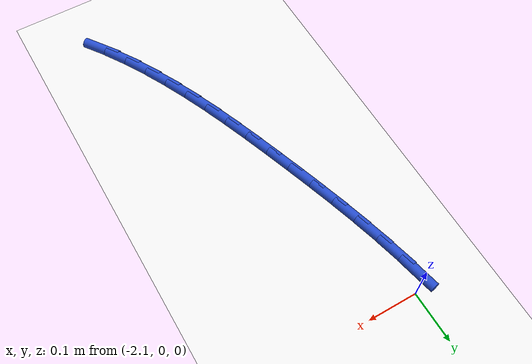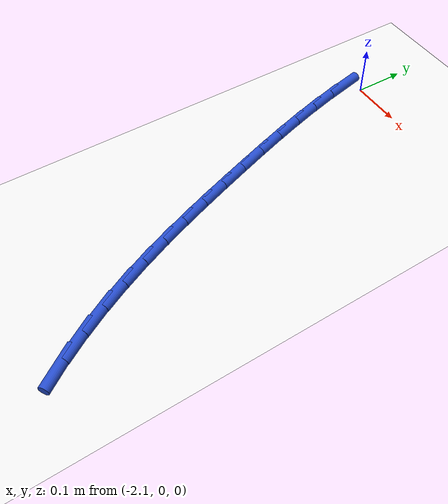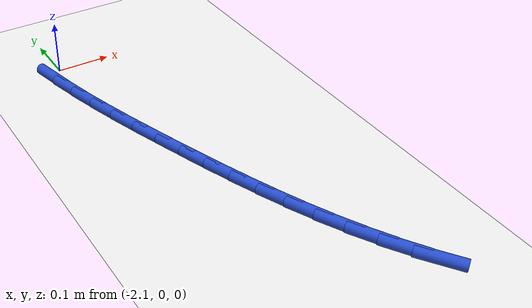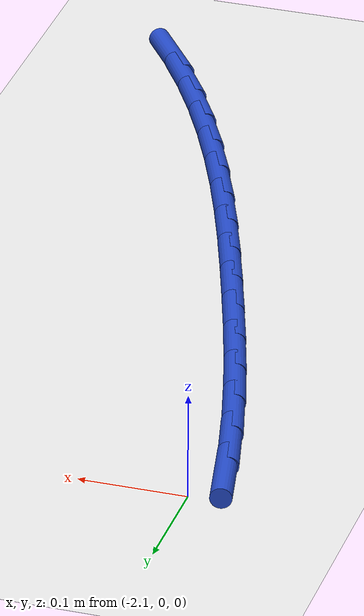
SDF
<sdf version="1.6">
 <world name="default">
  <model name="ground_plane">
   <static>1</static>
   <link name="link">
    <collision name="collision">
     <geometry><plane><normal>0 0 1</normal><size>100 100</size></plane></geometry>
     <surface><friction><ode><mu>100</mu><mu2>50</mu2></ode></friction></surface>
    </collision>
    <visual name="visual">
     <cast_shadows>0</cast_shadows>
     <geometry><plane><normal>0 0 1</normal><size>100 100</size></plane></geometry>
     <material>
      <script><uri>file://media/materials/scripts/gazebo.material</uri><name>Gazebo/WhiteGlow</name></script>
     </material>
    </visual>
   </link>
  </model>
  <model name="line">
   <link name="link_66">
    <pose>-2.1241616020836496 -0.028873466269548266 0.01 0 1.57 -1.35737852564886</pose>
    <collision name="collision">
     <geometry><cylinder><radius>0.01</radius><length>0.08</length></cylinder></geometry>
    </collision>
    <visual name="visual">
     <material>
      <script><name>Gazebo/Blue</name><uri>file://media/materials/scripts/gazebo.material</uri></script>
     </material>
     <geometry><cylinder><radius>0.01</radius><length>0.08</length></cylinder></geometry>
    </visual>
   </link>
   <link name="link_67">
    <pose>-2.1127475924562478 -0.08154099998868475 0.01 0 1.57 -1.3246392589999043</pose>
    <collision name="collision">
     <geometry><cylinder><radius>0.01</radius><length>0.08</length></cylinder></geometry>
    </collision>
    <visual name="visual">
     <material>
      <script><name>Gazebo/Blue</name><uri>file://media/materials/scripts/gazebo.material</uri></script>
     </material>
     <geometry><cylinder><radius>0.01</radius><length>0.08</length></cylinder></geometry>
    </visual>
   </link>
   <link name="link_68">
    <pose>-2.0994980373681242 -0.1342750387316325 0.01 0 1.57 -1.297632604780939</pose>
    <collision name="collision">
     <geometry><cylinder><radius>0.01</radius><length>0.08</length></cylinder></geometry>
    </collision>
    <visual name="visual">
     <material>
      <script><name>Gazebo/Blue</name><uri>file://media/materials/scripts/gazebo.material</uri></script>
     </material>
     <geometry><cylinder><radius>0.01</radius><length>0.08</length></cylinder></geometry>
    </visual>
   </link>
   <link name="link_69">
    <pose>-2.0847448917814693 -0.18693340365534228 0.01 0 1.57 -1.2759729886310454</pose>
    <collision name="collision">
     <geometry><cylinder><radius>0.01</radius><length>0.08</length></cylinder></geometry>
    </collision>
    <visual name="visual">
     <material>
      <script><name>Gazebo/Blue</name><uri>file://media/materials/scripts/gazebo.material</uri></script>
     </material>
     <geometry><cylinder><radius>0.01</radius><length>0.08</length></cylinder></geometry>
    </visual>
   </link>
   <link name="link_70">
    <pose>-2.0688201106584745 -0.23937391591676502 0.01 0 1.57 -1.259375085244555</pose>
    <collision name="collision">
     <geometry><cylinder><radius>0.01</radius><length>0.08</length></cylinder></geometry>
    </collision>
    <visual name="visual">
     <material>
      <script><name>Gazebo/Blue</name><uri>file://media/materials/scripts/gazebo.material</uri></script>
     </material>
     <geometry><cylinder><radius>0.01</radius><length>0.08</length></cylinder></geometry>
    </visual>
   </link>
   <link name="link_71">
    <pose>-2.0520556489613293 -0.2914543966728492 0.01 0 1.57 -1.247660413841868</pose>
    <collision name="collision">
     <geometry><cylinder><radius>0.01</radius><length>0.08</length></cylinder></geometry>
    </collision>
    <visual name="visual">
     <material>
      <script><name>Gazebo/Blue</name><uri>file://media/materials/scripts/gazebo.material</uri></script>
     </material>
     <geometry><cylinder><radius>0.01</radius><length>0.08</length></cylinder></geometry>
    </visual>
   </link>
   <link name="link_72">
    <pose>-2.034783461652224 -0.3430326670805457 0.01 0 1.57 -1.2396751141380524</pose>
    <collision name="collision">
     <geometry><cylinder><radius>0.01</radius><length>0.08</length></cylinder></geometry>
    </collision>
    <visual name="visual">
     <material>
      <script><name>Gazebo/Blue</name><uri>file://media/materials/scripts/gazebo.material</uri></script>
     </material>
     <geometry><cylinder><radius>0.01</radius><length>0.08</length></cylinder></geometry>
    </visual>
   </link>
   <link name="link_73">
    <pose>-2.017270053465379 -0.39397659824645426 0.01 0 1.57 -1.2289692232371985</pose>
    <collision name="collision">
     <geometry><cylinder><radius>0.01</radius><length>0.08</length></cylinder></geometry>
    </collision>
    <visual name="visual">
     <material>
      <script><name>Gazebo/Blue</name><uri>file://media/materials/scripts/gazebo.material</uri></script>
     </material>
     <geometry><cylinder><radius>0.01</radius><length>0.08</length></cylinder></geometry>
    </visual>
   </link>
   <link name="link_74">
    <pose>-1.999396139616691 -0.4442132996534934 0.01 0 1.57 -1.2130849224352744</pose>
    <collision name="collision">
     <geometry><cylinder><radius>0.01</radius><length>0.08</length></cylinder></geometry>
    </collision>
    <visual name="visual">
     <material>
      <script><name>Gazebo/Blue</name><uri>file://media/materials/scripts/gazebo.material</uri></script>
     </material>
     <geometry><cylinder><radius>0.01</radius><length>0.08</length></cylinder></geometry>
    </visual>
   </link>
   <link name="link_75">
    <pose>-1.9809015673933026 -0.49369151119955795 0.01 0 1.57 -1.191917189568876</pose>
    <collision name="collision">
     <geometry><cylinder><radius>0.01</radius><length>0.08</length></cylinder></geometry>
    </collision>
    <visual name="visual">
     <material>
      <script><name>Gazebo/Blue</name><uri>file://media/materials/scripts/gazebo.material</uri></script>
     </material>
     <geometry><cylinder><radius>0.01</radius><length>0.08</length></cylinder></geometry>
    </visual>
   </link>
   <link name="link_76">
    <pose>-1.9615259769245321 -0.5423600045918372 0.01 0 1.57 -1.165409494088589</pose>
    <collision name="collision">
     <geometry><cylinder><radius>0.01</radius><length>0.08</length></cylinder></geometry>
    </collision>
    <visual name="visual">
     <material>
      <script><name>Gazebo/Blue</name><uri>file://media/materials/scripts/gazebo.material</uri></script>
     </material>
     <geometry><cylinder><radius>0.01</radius><length>0.08</length></cylinder></geometry>
    </visual>
   </link>
   <link name="link_77">
    <pose>-1.9410090083396954 -0.5901675515375229 0.01 0 1.57 -1.1335704785689384</pose>
    <collision name="collision">
     <geometry><cylinder><radius>0.01</radius><length>0.08</length></cylinder></geometry>
    </collision>
    <visual name="visual">
     <material>
      <script><name>Gazebo/Blue</name><uri>file://media/materials/scripts/gazebo.material</uri></script>
     </material>
     <geometry><cylinder><radius>0.01</radius><length>0.08</length></cylinder></geometry>
    </visual>
   </link>
   <link name="link_78">
    <pose>-1.9190903017681096 -0.6370629237438059 0.01 0 1.57 -1.0964977937557774</pose>
    <collision name="collision">
     <geometry><cylinder><radius>0.01</radius><length>0.08</length></cylinder></geometry>
    </collision>
    <visual name="visual">
     <material>
      <script><name>Gazebo/Blue</name><uri>file://media/materials/scripts/gazebo.material</uri></script>
     </material>
     <geometry><cylinder><radius>0.01</radius><length>0.08</length></cylinder></geometry>
    </visual>
   </link>
   <link name="link_79">
    <pose>-1.8955094973390925 -0.6829948929178764 0.01 0 1.57 -1.0544033793426506</pose>
    <collision name="collision">
     <geometry><cylinder><radius>0.01</radius><length>0.08</length></cylinder></geometry>
    </collision>
    <visual name="visual">
     <material>
      <script><name>Gazebo/Blue</name><uri>file://media/materials/scripts/gazebo.material</uri></script>
     </material>
     <geometry><cylinder><radius>0.01</radius><length>0.08</length></cylinder></geometry>
    </visual>
   </link>
   <link name="link_80">
    <pose>-1.8700062351819613 -0.7279122307669256 0.01 0 1.57 -1.0076364250796088</pose>
    <collision name="collision">
     <geometry><cylinder><radius>0.01</radius><length>0.08</length></cylinder></geometry>
    </collision>
    <visual name="visual">
     <material>
      <script><name>Gazebo/Blue</name><uri>file://media/materials/scripts/gazebo.material</uri></script>
     </material>
     <geometry><cylinder><radius>0.01</radius><length>0.08</length></cylinder></geometry>
    </visual>
   </link>
   <link name="link_81">
    <pose>-1.8423201554260327 -0.7717637089981444 0.01 0 1.57 -0.9567019109059784</pose>
    <collision name="collision">
     <geometry><cylinder><radius>0.01</radius><length>0.08</length></cylinder></geometry>
    </collision>
    <visual name="visual">
     <material>
      <script><name>Gazebo/Blue</name><uri>file://media/materials/scripts/gazebo.material</uri></script>
     </material>
     <geometry><cylinder><radius>0.01</radius><length>0.08</length></cylinder></geometry>
    </visual>
   </link>
  </model>
 </world>
</sdf>
